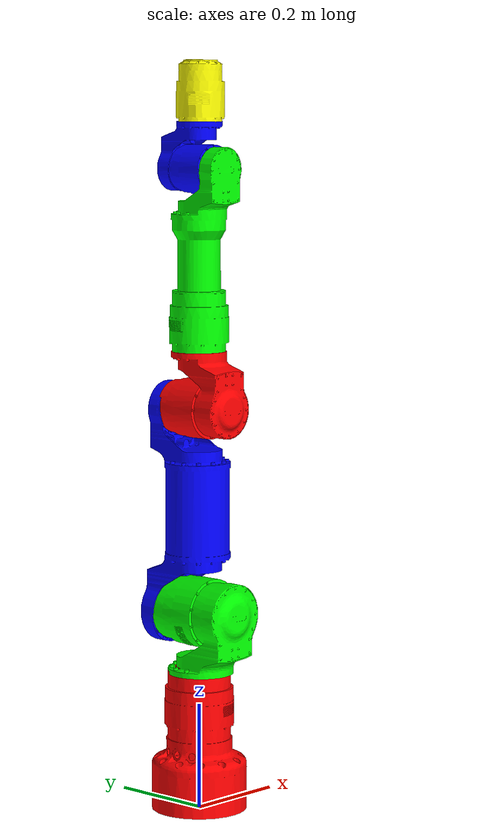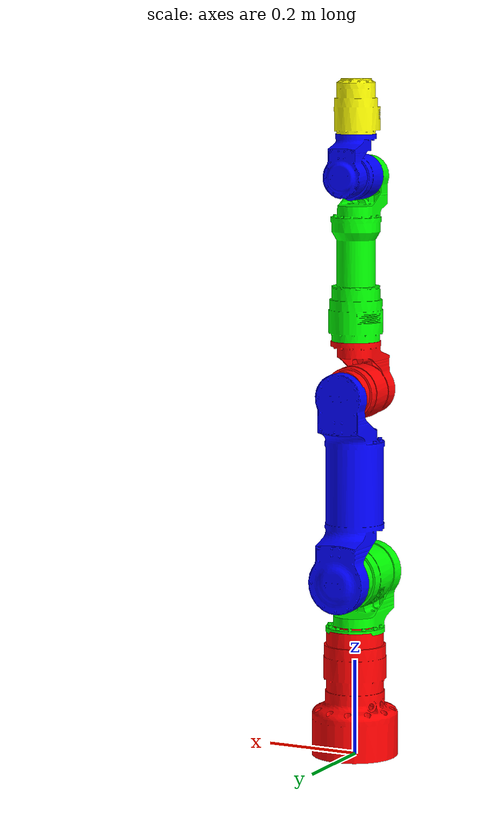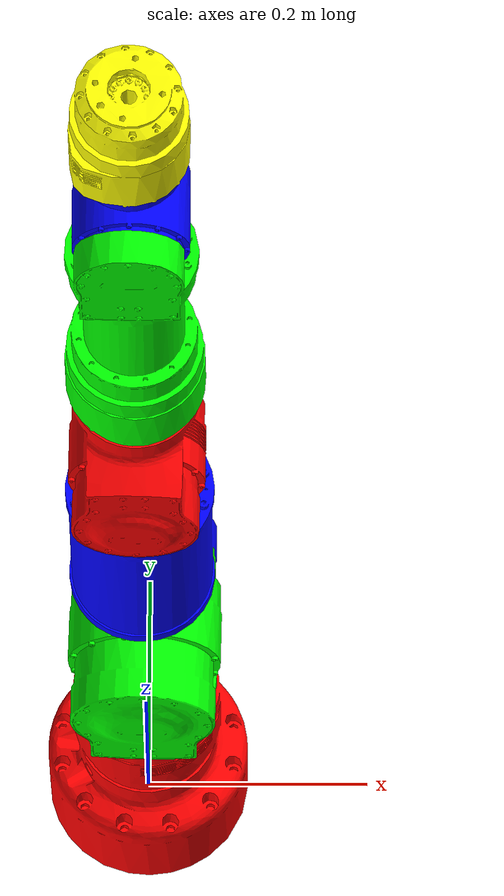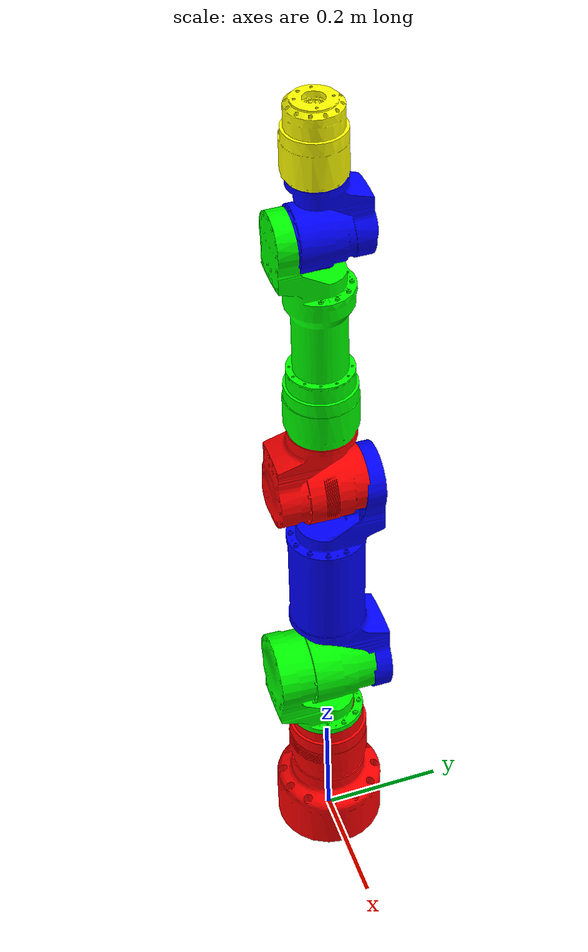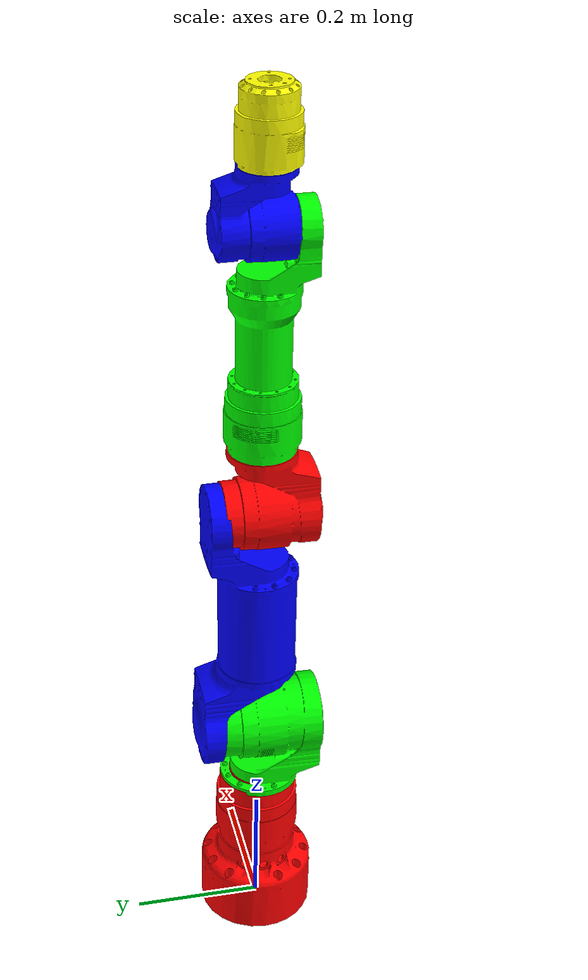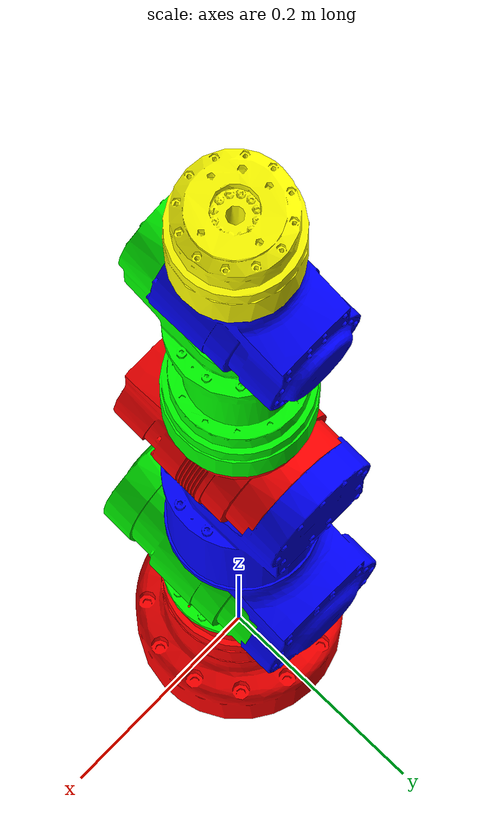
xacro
<?xml version="1.0"?>
<robot name="schunk" xmlns:xacro="http://ros.org/wiki/xacro">

<xacro:property name="M_PI" value="3.1415926535897931" />

<!--================================================================Gazebo References=============================================================================-->

<gazebo reference="base_link">
    <gravity>true</gravity>
    <self_collide>false</self_collide>
    <material value="Gazebo/Red"/>
</gazebo>

<gazebo reference="link1">
    <gravity>true</gravity>
    <self_collide>false</self_collide>
    <material value="Gazebo/Green"/>
</gazebo>

<gazebo reference="link2">
    <gravity>true</gravity>
    <self_collide>false</self_collide>
    <material value="Gazebo/Blue"/>
</gazebo>

<gazebo reference="link3">
    <gravity>true</gravity>
    <self_collide>false</self_collide>
    <material value="Gazebo/Red"/>
</gazebo>

<gazebo reference="link4">
    <gravity>true</gravity>
    <self_collide>false</self_collide>
    <material value="Gazebo/Green"/>
</gazebo>

<gazebo reference="link5">
    <gravity>true</gravity>
    <self_collide>false</self_collide>
    <material value="Gazebo/Blue"/>
</gazebo>

<gazebo reference="link6">
    <gravity>true</gravity>
    <self_collide>false</self_collide>
    <material value="Gazebo/Yellow"/>
    <!-- minDepth for magnetic gripper -->
    <minDepth>0.02</minDepth>
</gazebo>

<gazebo>
  <plugin name="gazebo_ros_control" filename="libgazebo_ros_control.so">
    <robotNamespace>/schunk</robotNamespace>
  </plugin>
</gazebo>

<!--===================================================+==========Schunk Arm====================================================================================-->
<!--===================================================+========= Schunk arm connection to world ====================================================================================-->

<!-- Used for fixing robot to world -->
<link name="world"/>
<!--================================================================Schunk Arm Base===============================================================================-->

<link name="base_link">
    <visual>
        <origin xyz ="0 0 0" rpy="0 0 0"/>
        <geometry>
            <mesh filename="package://schunk_robot/meshes/robot_base_v3.STL"/>
        </geometry>
        <material name="red">
            <color rgba="1 0 0 1"/>
        </material>
        <!-- Gazebo visual plugin for changing the background of the scene -->
        <plugin name="visual_scene_edit" filename="libvisual_scene_edit.so">

        </plugin>
    </visual>
    <collision>
      <origin xyz="0 0 0" rpy="0 0 0"/>
      <geometry>
            <mesh filename="package://schunk_robot/meshes/robot_base_v3.STL"/>
      </geometry>
    </collision>
    <inertial>
        <!--mass value="2"/-->
        <mass value="7"/>
        <origin xyz="0 0 0" rpy="0 0 0"/>
        <inertia ixx="0.007988" ixy="0.000000" ixz="0.000000"
                 iyx="0.000000" iyy="0.004975" iyz="0.000000"
                 izx="0.000000" izy="0.000000" izz="0.008000"/>
    </inertial>
</link>

<joint name="arm_to_world_joint" type="fixed">
     <parent link="world"/>
    <child link="base_link"/>
    <origin xyz="0.0 0 0.0" rpy="0 0 0"/>
</joint>

<!--================================================================Link 1====================================================================================-->

<link name="link1">
    <visual>
        <origin xyz="0 0 0.165" rpy="-1.57079 0 0"/>
        <geometry>
            <mesh filename="package://schunk_robot/meshes/joint1_v3.STL"/>
        </geometry>
        <material name="green">
            <color rgba="0 1 0 1"/>
        </material>
    </visual>
    <collision>
      <origin rpy="-1.57079 0 0" xyz="0 0 0.165"/>
      <geometry>
            <mesh filename="package://schunk_robot/meshes/joint1_v3.STL"/>
      </geometry>
    </collision>
    <inertial> -->
        <!--mass value="2"/-->
        <mass value="4.1"/>
        <origin xyz="0 0 0.16" rpy="0 0 0"/>
        <inertia ixx="0.012578" ixy="0.000868" ixz="0.000291"
                 iyx="0.000868" iyy="0.005680" iyz="0.002500"
                 izx="0.000291" izy="0.002500" izz="0.011852"/>
    </inertial>
</link>

<joint name="joint1" type="revolute">
    <axis xyz="0 0 1"/>
    <limit effort="1000.0" lower="-2.9671" upper="2.9671" velocity="0.5"/>
    <parent link="base_link"/>
    <child link="link1"/>
    <origin xyz="0 0 0.215" rpy="0 0 0"/>
    <dynamics damping="0.0" friction="0.0"/>
</joint>

<!--================================================================Link 2====================================================================================-->

<link name="link2">
    <visual>
        <origin rpy="0 0 0" xyz="0 0.005 0"/>
        <geometry>
            <mesh filename="package://schunk_robot/meshes/joint2_v3.STL"/>
        </geometry>
        <material name="blue">
            <color rgba="0 0 1 1"/>
        </material>
    </visual>
    <collision>
        <origin rpy="0 0 0" xyz="0 0 0"/>
        <geometry>
            <mesh filename="package://schunk_robot/meshes/joint2_v3.STL"/>
        </geometry>
    </collision>
    <inertial>
        <!--mass value="2"/-->
         <mass value="2.5"/>
        <origin xyz="0 -0.1925 0" rpy="0 0 0"/>
        <inertia ixx="0.030278"	 ixy="-0.007138" ixz="0.000435"
                 iyx="-0.007138" iyy="0.010755"	 iyz="0.000859"
                 izx="0.000435"	 izy=" 0.000859" izz="0.030724"/>
    </inertial>
</link>

<joint name="joint2" type="revolute">
    <axis xyz="0 0 1"/>
    <limit effort="1000.0" lower="-2.0071" upper="2.0071" velocity="0.5"/>
    <parent link="link1"/>
    <child link="link2"/>
    <origin xyz="0 0 0.165" rpy="-1.57079 0 0"/>
    <dynamics damping="0.0" friction="0.0"/>
</joint>
<!--================================================================Link 3====================================================================================-->

<link name="link3">
    <visual>
        <origin xyz="0 0 0" rpy="0 0 0"/>
        <geometry>
            <mesh filename="package://schunk_robot/meshes/joint3_v3.STL"/>
        </geometry>
        <material name="red">
            <color rgba="1 0 0 1"/>
        </material>
    </visual>
    <collision>
        <origin xyz="0 0 0" rpy="0 0 0"/>
        <geometry>
            <mesh filename="package://schunk_robot/meshes/joint3_v3.STL"/>
        </geometry>
    </collision>
    <inertial>
        <!--mass value="2"/-->
        <mass value="2.5"/>
        <origin xyz="0 0 0" rpy="0 0 0"/>
        <inertia ixx="0.002573" ixy="0.000000" ixz="0.000000"
                 iyx="0.000000" iyy="0.003196" iyz="0.000000"
                 izx="0.000000" izy="0.000000" izz="0.002484"/>
    </inertial>
</link>

<joint name="joint3" type="revolute">
    <axis xyz="0 0 1"/>
    <limit effort="1000.0" lower="-1.9199" upper="1.9199" velocity="0.5"/>
    <parent link="link2"/>
    <child link="link3"/>
    <origin xyz="0 -0.385 0" rpy="0 0 0"/>
    <dynamics damping="0.0" friction="0.0"/>
</joint>

<!--================================================================Link 4====================================================================================-->

<link name="link4">
    <visual>
        <origin xyz="0 0 0.4445" rpy="0 0 0" />
        <geometry>
            <mesh filename="package://schunk_robot/meshes/joint4_v3.STL"/>
        </geometry>
        <material name="green">
            <color rgba="0 1 0 1"/>
        </material>
    </visual>
    <collision>
        <origin xyz="0 0 0.4445" rpy="0 0 0"/>
        <geometry>
            <mesh filename="package://schunk_robot/meshes/joint4_v3.STL"/>
        </geometry>
    </collision>
    <inertial>
        <!--mass value="2"/-->
        <mass value="1.7"/>
        <origin xyz="0 0 0.2225" rpy="1.57079 1.57079 0"/>
        <inertia ixx="0.003830"  ixy="0.001706"  ixz="-0.003042"
                 iyx="0.001706"  iyy="0.010112"  iyz="-0.000765"
                 izx="-0.003042" izy="-0.000765" izz="0.009108"/>
    </inertial>
</link>

<joint name="joint4" type="revolute">
    <axis xyz="0 0 1"/>
    <limit effort="1000.0" lower="-3.4907" upper="3.4907" velocity="0.5"/>
    <parent link="link3"/>
    <child link="link4"/>
    <origin xyz="0 0 0" rpy="1.57079 0 0"/>
    <dynamics damping="0.0" friction="0.0"/>
</joint>
<!--================================================================Link 5====================================================================================-->

<link name="link5">
    <visual>
        <origin xyz="0 0 0" rpy="1.57079 0 3.14159"/>
        <geometry>
            <mesh filename="package://schunk_robot/meshes/joint5_v3.STL"/>
        </geometry>
        <material name="blue">
            <color rgba="0 0 1 1"/>
        </material>
    </visual>
    <collision>
        <origin xyz="0 0 0" rpy="1.57079 0 3.14159"/>
        <geometry>
            <mesh filename="package://schunk_robot/meshes/joint5_v3.STL"/>
        </geometry>
    </collision>
    <inertial>
        <!--mass value="2"/-->
        <mass value="1.6"/>
        <origin xyz="0 0 0" rpy="0 0 0"/>
        <inertia ixx="0.001222" ixy="0.000061" ixz="0.000141"
                 iyx="0.000061" iyy="0.001793" iyz="0.000048"
                 izx="0.000141" izy="0.000048" izz="0.001435"/>
    </inertial>
</link>

<joint name="joint5" type="revolute">
    <axis xyz="0 0 1"/>
    <limit effort="1000.0" lower="-1.8675" upper="1.8675" velocity="0.5"/>
    <parent link="link4"/>
    <child link="link5"/>
    <origin  xyz="0 0 0.445" rpy="-1.57079 0 0"/>
    <dynamics damping="0.0" friction="0.0"/>
</joint>
<!--================================================================Link 6====================================================================================-->

<link name="link6">
    <visual>
        <origin rpy="0 0 0" xyz="0 0 0"/>
        <geometry>
            <mesh filename="package://schunk_robot/meshes/joint6_v3.STL"/>
        </geometry>
        <material name="yellow">
            <color rgba="1 1 0 1"/>
        </material>
    </visual>
    <collision>
        <origin rpy="0 0 0" xyz="0 0 0"/>
        <geometry>
              <mesh filename="package://schunk_robot/meshes/joint6_v3.STL"/>
        </geometry>
    </collision>
    <inertial>
        <!--mass value="2"/-->
        <mass value="1.6"/>
        <origin xyz="0 0 -0.06" rpy="0 0 0"/>
        <inertia ixx="0.000654" ixy="0.000000" ixz="0.000000"
                 iyx="0.000000" iyy="0.000954" iyz="0.000000"
                 izx="0.000000" izy="0.000000" izz="0.000929"/>
    </inertial>
</link>

<joint name="joint6" type="revolute">
    <origin xyz="0 -0.2 0" rpy="1.57079 0 0" />
    <axis xyz="0 0 1"/>
    <limit effort="1000.0" lower="-3.4907" upper="3.4907" velocity="0.5"/>
    <parent link="link5"/>
    <child link="link6"/>
    <dynamics damping="0.0" friction="0.0"/>
</joint>

<!-- =================================== Transmissions for the joints ========================================== -->

<!-- It seems that the Schunks joints are effort based, but we will use position based joints for now -->

<transmission name="joint1_trans">
    <type>transmission_interface/SimpleTransmission</type>
    <joint name="joint1">
        <hardwareInterface>hardware_interface/PositionJointInterface</hardwareInterface>
    </joint>
    <actuator name="joint1_motor">
        <hardwareInterface>hardware_interface/PositionJointInterface</hardwareInterface>
        <mechanicalReduction>1</mechanicalReduction>
    </actuator>
</transmission>

<transmission name="joint2_trans">
    <type>transmission_interface/SimpleTransmission</type>
    <joint name="joint2">
        <hardwareInterface>hardware_interface/PositionJointInterface</hardwareInterface>
    </joint>
    <actuator name="joint2_motor">
        <hardwareInterface>hardware_interface/PositionJointInterface</hardwareInterface>
        <mechanicalReduction>1</mechanicalReduction>
    </actuator>
</transmission>

<transmission name="joint3_trans">
    <type>transmission_interface/SimpleTransmission</type>
    <joint name="joint3">
        <hardwareInterface>hardware_interface/PositionJointInterface</hardwareInterface>
    </joint>
    <actuator name="joint3_motor">
        <hardwareInterface>hardware_interface/PositionJointInterface</hardwareInterface>
        <mechanicalReduction>1</mechanicalReduction>
    </actuator>
</transmission>

<transmission name="joint4_trans">
    <type>transmission_interface/SimpleTransmission</type>
    <joint name="joint4">
        <hardwareInterface>hardware_interface/PositionJointInterface</hardwareInterface>
    </joint>
    <actuator name="joint4_motor">
        <hardwareInterface>hardware_interface/PositionJointInterface</hardwareInterface>
        <mechanicalReduction>1</mechanicalReduction>
    </actuator>
</transmission>

<transmission name="joint5_trans">
    <type>transmission_interface/SimpleTransmission</type>
    <joint name="joint5">
        <hardwareInterface>hardware_interface/PositionJointInterface</hardwareInterface>
    </joint>
    <actuator name="joint5_motor">
        <hardwareInterface>hardware_interface/PositionJointInterface</hardwareInterface>
        <mechanicalReduction>1</mechanicalReduction>
    </actuator>
</transmission>

<transmission name="joint6_trans">
    <type>transmission_interface/SimpleTransmission</type>
    <joint name="joint6">
        <hardwareInterface>hardware_interface/PositionJointInterface</hardwareInterface>
    </joint>
    <actuator name="joint6_motor">
        <hardwareInterface>hardware_interface/PositionJointInterface</hardwareInterface>
        <mechanicalReduction>1</mechanicalReduction>
    </actuator>
</transmission>

</robot>
